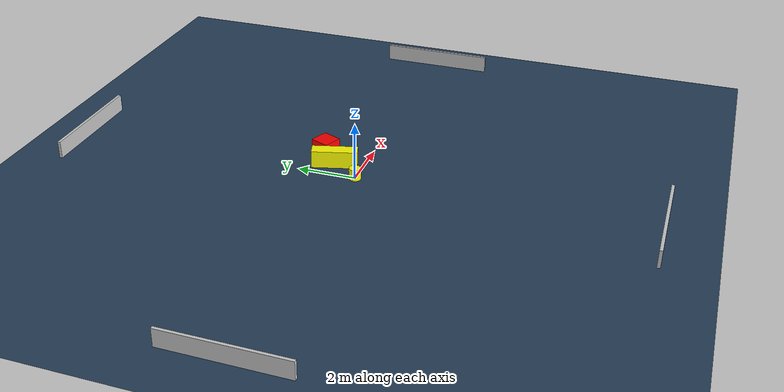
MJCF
<?xml version="1.0" ?>
<mujoco model="generated_environment">
  <option timestep="0.01" integrator="RK4" cone="elliptic"/>
  <default>
    <geom density="1"/>
  </default>
  <asset>
    <texture builtin="gradient" height="3072" name="skybox" rgb1="0.3 0.5 0.7" rgb2="0 0 0" type="skybox" width="512"/>
    <texture builtin="checker" height="300" name="groundplane" rgb1="0.2 0.3 0.4" rgb2="0.1 0.2 0.3" type="2d" width="300"/>
    <material name="groundplane" reflectance="0.2" texrepeat="5 5" texture="groundplane"/>
  </asset>
  <worldbody>
    <light dir="0 0 -1" directional="true" pos="0 0 1.5"/>
    <geom condim="3" friction="0.5 0.005 0.001" material="groundplane" name="floor" pos="0 0 0" size="0 0 0.05" type="plane"/>
    <body name="walls">
      <geom name="wall_1" condim="4" pos="-10.0 0.0 0.3" rgba="0.800000011920929 0.800000011920929 0.800000011920929 1.0" size="0.05 2.0 0.3" type="box"/>
      <geom name="wall_2" condim="4" pos="10.0 0.0 0.3" rgba="0.800000011920929 0.800000011920929 0.800000011920929 1.0" size="0.05 2.0 0.3" type="box"/>
      <geom name="wall_3" condim="4" pos="0.0 -10.0 0.3" rgba="0.800000011920929 0.800000011920929 0.800000011920929 1.0" size="2.0 0.05 0.3" type="box"/>
      <geom name="wall_4" condim="4" pos="0.0 10.0 0.3" rgba="0.800000011920929 0.800000011920929 0.800000011920929 1.0" size="2.0 0.05 0.3" type="box"/>
    </body>
    <body name="robot">
      <joint name="joint_x" type="slide" pos="0 0 0" axis="1 0 0"/>
      <joint name="joint_y" type="slide" pos="0 0 0" axis="0 1 0"/>
      <geom name="robot" type="cylinder" pos="0.0 0.0 0.2" size="0.2 0.2 0.0" mass="5.0" friction="1.0 0.005 0.0001" condim="4" rgba="1.0 1.0 0.0 1.0"/>
    </body>
    <body name="obstacle_1_movable">
      <geom name="obstacle_1_movable" condim="4" pos="0.6602375688130252 0.9592335410851454 0.3" euler="0 0 15.519636656442074" friction="0.0 0.005 0.001" rgba="1.0 1.0 0.0 1.0" size="0.2289806674427323 0.7785450415024733 0.3" type="box" mass="0.1"/>
      <joint type="free"/>
    </body>
    <body name="obstacle_2_static">
      <geom name="obstacle_2_static" condim="4" pos="1.2586831132880183 1.505238129029776 0.3" euler="0 0 247.20810159315414" friction="0.0 0.005 0.001" rgba="1.0 0.0 0.0 1.0" size="0.3379182971059774 0.3295229827704407 0.3" type="box"/>
    </body>
  </worldbody>
  <actuator>
    <motor name="actuator_x" joint="joint_x" gear="1" ctrlrange="-1 1"/>
    <motor name="actuator_y" joint="joint_y" gear="1" ctrlrange="-1 1"/>
  </actuator>
</mujoco>
